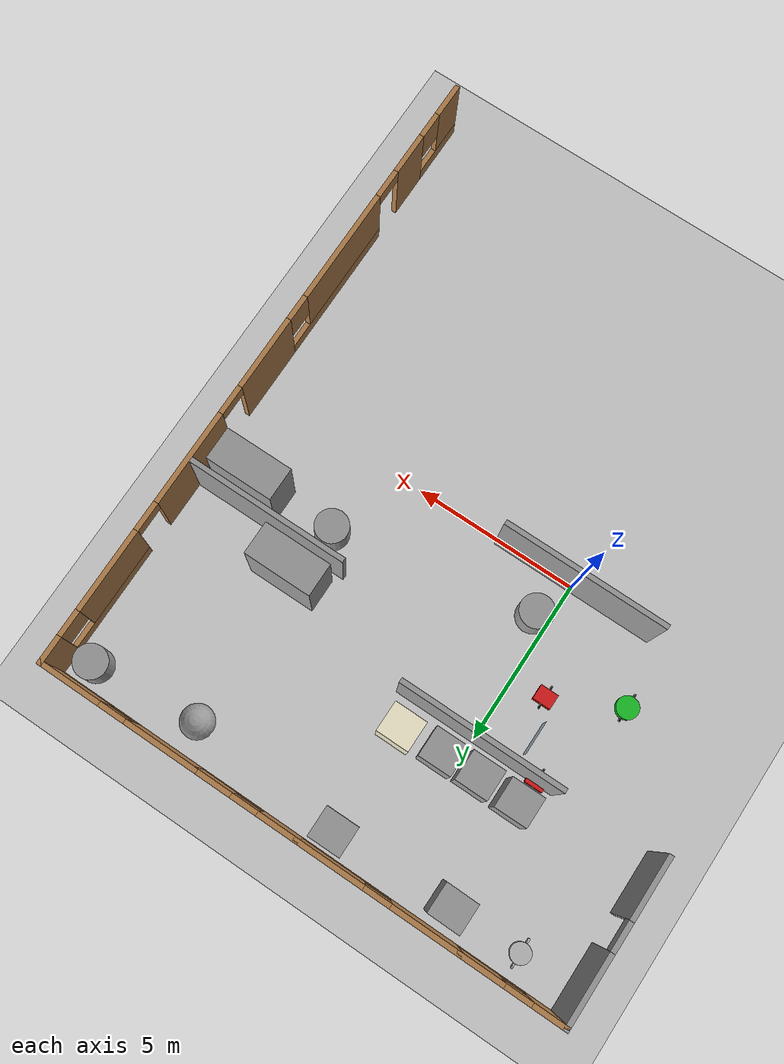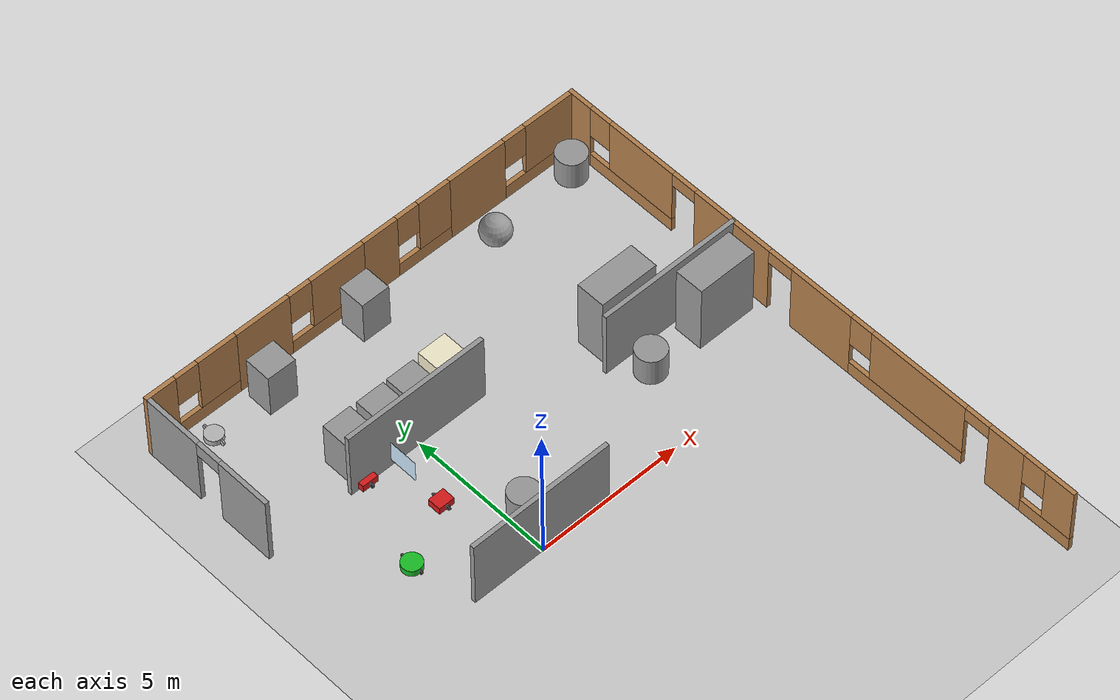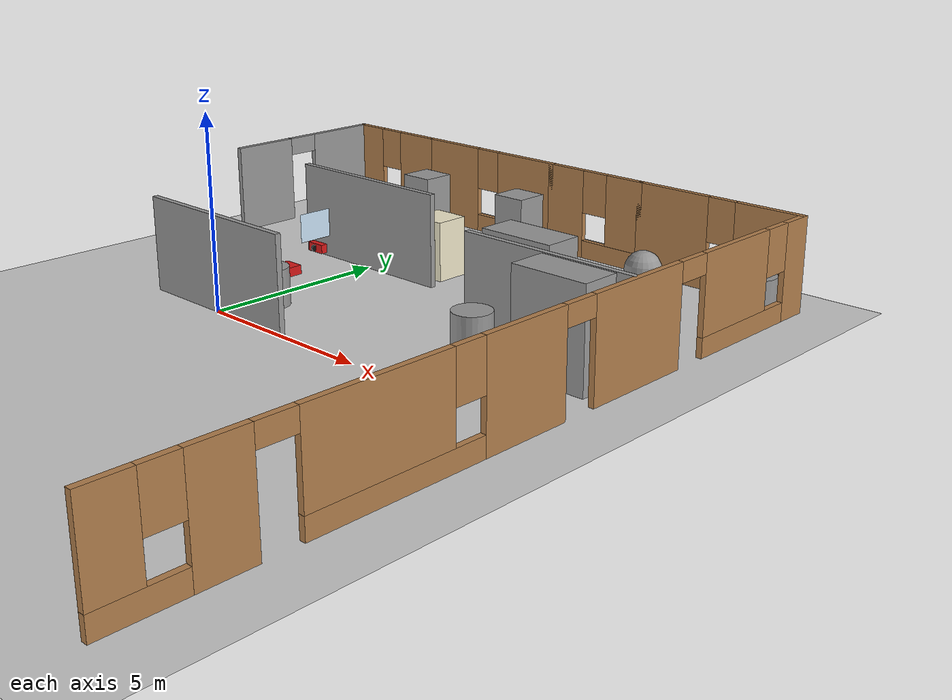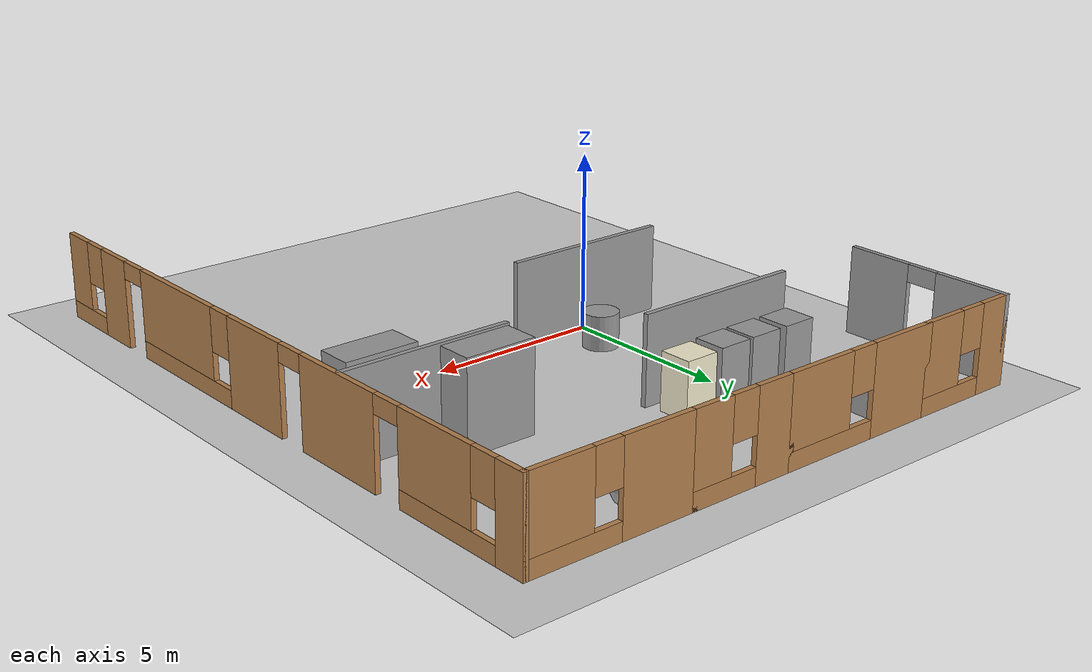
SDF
<sdf version="1.7">
 <world name="default">
  <model name="ground_plane">
   <static>1</static>
   <link name="link">
    <collision name="collision">
     <geometry><plane><normal>0 0 1</normal><size>100 100</size></plane></geometry>
     <surface><friction><ode><mu>100</mu><mu2>50</mu2></ode></friction></surface>
    </collision>
    <visual name="visual">
     <cast_shadows>0</cast_shadows>
     <geometry><plane><normal>0 0 1</normal><size>100 100</size></plane></geometry>
     <material>
      <script><uri>file://media/materials/scripts/gazebo.material</uri><name>Gazebo/Grey</name></script>
     </material>
    </visual>
   </link>
  </model>
  <model name="hospital_floor_v2">
   <link name="Wall_111">
    <pose>7.95 9.8256 0 0 -0 0</pose>
    <visual name="Wall_111_Visual_0">
     <pose>-1.37417 0 1.25 0 -0 0</pose>
     <geometry><box><size>2.25167 0.15 2.5</size></box></geometry>
     <material>
      <script><uri>file://media/materials/scripts/gazebo.material</uri><name>Gazebo/Wood</name></script>
      <ambient>1 1 1 1</ambient>
     </material>
     <meta><layer>0</layer></meta>
    </visual>
    <collision name="Wall_111_Collision_0">
     <geometry><box><size>2.25167 0.15 2.5</size></box></geometry>
     <pose>-1.37417 0 1.25 0 -0 0</pose>
    </collision>
    <visual name="Wall_111_Visual_1">
     <pose>1.12583 0 0.25 0 -0 0</pose>
     <geometry><box><size>2.74833 0.15 0.5</size></box></geometry>
     <material>
      <script><uri>file://media/materials/scripts/gazebo.material</uri><name>Gazebo/Wood</name></script>
      <ambient>1 1 1 1</ambient>
     </material>
     <meta><layer>0</layer></meta>
    </visual>
    <collision name="Wall_111_Collision_1">
     <geometry><box><size>2.74833 0.15 0.5</size></box></geometry>
     <pose>1.12583 0 0.25 0 -0 0</pose>
    </collision>
    <visual name="Wall_111_Visual_2">
     <pose>1.52583 0 1.5 0 -0 0</pose>
     <geometry><box><size>1.94833 0.15 2</size></box></geometry>
     <material>
      <script><uri>file://media/materials/scripts/gazebo.material</uri><name>Gazebo/Wood</name></script>
      <ambient>1 1 1 1</ambient>
     </material>
     <meta><layer>0</layer></meta>
    </visual>
    <collision name="Wall_111_Collision_2">
     <geometry><box><size>1.94833 0.15 2</size></box></geometry>
     <pose>1.52583 0 1.5 0 -0 0</pose>
    </collision>
    <visual name="Wall_111_Visual_3">
     <pose>0.151665 0 1.9 0 -0 0</pose>
     <geometry><box><size>0.8 0.15 1.2</size></box></geometry>
     <material>
      <script><uri>file://media/materials/scripts/gazebo.material</uri><name>Gazebo/Wood</name></script>
      <ambient>1 1 1 1</ambient>
     </material>
     <meta><layer>0</layer></meta>
    </visual>
    <collision name="Wall_111_Collision_3">
     <geometry><box><size>0.8 0.15 1.2</size></box></geometry>
     <pose>0.151665 0 1.9 0 -0 0</pose>
    </collision>
   </link>
   <link name="Wall_112">
    <pose>10.375 0.025599 0 0 -0 -1.5708</pose>
    <visual name="Wall_112_Visual_0">
     <pose>-9.42467 0 1.25 0 -0 0</pose>
     <geometry><box><size>0.900667 0.15 2.5</size></box></geometry>
     <material>
      <script><uri>file://media/materials/scripts/gazebo.material</uri><name>Gazebo/Wood</name></script>
      <ambient>1 1 1 1</ambient>
     </material>
     <meta><layer>0</layer></meta>
    </visual>
    <collision name="Wall_112_Collision_0">
     <geometry><box><size>0.900667 0.15 2.5</size></box></geometry>
     <pose>-9.42467 0 1.25 0 -0 0</pose>
    </collision>
    <visual name="Wall_112_Visual_1">
     <pose>-3.24113 0 1.25 0 -0 0</pose>
     <geometry><box><size>2.95288 0.15 2.5</size></box></geometry>
     <material>
      <script><uri>file://media/materials/scripts/gazebo.material</uri><name>Gazebo/Wood</name></script>
      <ambient>1 1 1 1</ambient>
     </material>
     <meta><layer>0</layer></meta>
    </visual>
    <collision name="Wall_112_Collision_1">
     <geometry><box><size>2.95288 0.15 2.5</size></box></geometry>
     <pose>-3.24113 0 1.25 0 -0 0</pose>
    </collision>
    <visual name="Wall_112_Visual_2">
     <pose>0.29202 0 1.25 0 -0 0</pose>
     <geometry><box><size>2.31342 0.15 2.5</size></box></geometry>
     <material>
      <script><uri>file://media/materials/scripts/gazebo.material</uri><name>Gazebo/Wood</name></script>
      <ambient>1 1 1 1</ambient>
     </material>
     <meta><layer>0</layer></meta>
    </visual>
    <collision name="Wall_112_Collision_2">
     <geometry><box><size>2.31342 0.15 2.5</size></box></geometry>
     <pose>0.29202 0 1.25 0 -0 0</pose>
    </collision>
    <visual name="Wall_112_Visual_3">
     <pose>7.36916 0 1.25 0 -0 0</pose>
     <geometry><box><size>1.2995 0.15 2.5</size></box></geometry>
     <material>
      <script><uri>file://media/materials/scripts/gazebo.material</uri><name>Gazebo/Wood</name></script>
      <ambient>1 1 1 1</ambient>
     </material>
     <meta><layer>0</layer></meta>
    </visual>
    <collision name="Wall_112_Collision_3">
     <geometry><box><size>1.2995 0.15 2.5</size></box></geometry>
     <pose>7.36916 0 1.25 0 -0 0</pose>
    </collision>
    <visual name="Wall_112_Visual_4">
     <pose>-7.29595 0 0.25 0 -0 0</pose>
     <geometry><box><size>3.35676 0.15 0.5</size></box></geometry>
     <material>
      <script><uri>file://media/materials/scripts/gazebo.material</uri><name>Gazebo/Wood</name></script>
      <ambient>1 1 1 1</ambient>
     </material>
     <meta><layer>0</layer></meta>
    </visual>
    <collision name="Wall_112_Collision_4">
     <geometry><box><size>3.35676 0.15 0.5</size></box></geometry>
     <pose>-7.29595 0 0.25 0 -0 0</pose>
    </collision>
    <visual name="Wall_112_Visual_5">
     <pose>3.63407 0 0.25 0 -0 0</pose>
     <geometry><box><size>4.37068 0.15 0.5</size></box></geometry>
     <material>
      <script><uri>file://media/materials/scripts/gazebo.material</uri><name>Gazebo/Wood</name></script>
      <ambient>1 1 1 1</ambient>
     </material>
     <meta><layer>0</layer></meta>
    </visual>
    <collision name="Wall_112_Collision_5">
     <geometry><box><size>4.37068 0.15 0.5</size></box></geometry>
     <pose>3.63407 0 0.25 0 -0 0</pose>
    </collision>
    <visual name="Wall_112_Visual_6">
     <pose>8.94696 0 0.25 0 -0 0</pose>
     <geometry><box><size>1.85609 0.15 0.5</size></box></geometry>
     <material>
      <script><uri>file://media/materials/scripts/gazebo.material</uri><name>Gazebo/Wood</name></script>
      <ambient>1 1 1 1</ambient>
     </material>
     <meta><layer>0</layer></meta>
    </visual>
    <collision name="Wall_112_Collision_6">
     <geometry><box><size>1.85609 0.15 0.5</size></box></geometry>
     <pose>8.94696 0 0.25 0 -0 0</pose>
    </collision>
    <visual name="Wall_112_Visual_7">
     <pose>-6.89595 0 1.5 0 -0 0</pose>
     <geometry><box><size>2.55676 0.15 2</size></box></geometry>
     <material>
      <script><uri>file://media/materials/scripts/gazebo.material</uri><name>Gazebo/Wood</name></script>
      <ambient>1 1 1 1</ambient>
     </material>
     <meta><layer>0</layer></meta>
    </visual>
    <collision name="Wall_112_Collision_7">
     <geometry><box><size>2.55676 0.15 2</size></box></geometry>
     <pose>-6.89595 0 1.5 0 -0 0</pose>
    </collision>
    <visual name="Wall_112_Visual_8">
     <pose>-6.89595 0 1.5 0 -0 0</pose>
     <geometry><box><size>2.55676 0.15 2</size></box></geometry>
     <material>
      <script><uri>file://media/materials/scripts/gazebo.material</uri><name>Gazebo/Wood</name></script>
      <ambient>1 1 1 1</ambient>
     </material>
     <meta><layer>0</layer></meta>
    </visual>
    <collision name="Wall_112_Collision_8">
     <geometry><box><size>2.55676 0.15 2</size></box></geometry>
     <pose>-6.89595 0 1.5 0 -0 0</pose>
    </collision>
    <visual name="Wall_112_Visual_9">
     <pose>4.03407 0 1.5 0 -0 0</pose>
     <geometry><box><size>3.57068 0.15 2</size></box></geometry>
     <material>
      <script><uri>file://media/materials/scripts/gazebo.material</uri><name>Gazebo/Wood</name></script>
      <ambient>1 1 1 1</ambient>
     </material>
     <meta><layer>0</layer></meta>
    </visual>
    <collision name="Wall_112_Collision_9">
     <geometry><box><size>3.57068 0.15 2</size></box></geometry>
     <pose>4.03407 0 1.5 0 -0 0</pose>
    </collision>
    <visual name="Wall_112_Visual_10">
     <pose>4.03407 0 1.5 0 -0 0</pose>
     <geometry><box><size>3.57068 0.15 2</size></box></geometry>
     <material>
      <script><uri>file://media/materials/scripts/gazebo.material</uri><name>Gazebo/Wood</name></script>
      <ambient>1 1 1 1</ambient>
     </material>
     <meta><layer>0</layer></meta>
    </visual>
    <collision name="Wall_112_Collision_10">
     <geometry><box><size>3.57068 0.15 2</size></box></geometry>
     <pose>4.03407 0 1.5 0 -0 0</pose>
    </collision>
    <visual name="Wall_112_Visual_11">
     <pose>9.34695 0 1.5 0 -0 0</pose>
     <geometry><box><size>1.05609 0.15 2</size></box></geometry>
     <material>
      <script><uri>file://media/materials/scripts/gazebo.material</uri><name>Gazebo/Wood</name></script>
      <ambient>1 1 1 1</ambient>
     </material>
     <meta><layer>0</layer></meta>
    </visual>
    <collision name="Wall_112_Collision_11">
     <geometry><box><size>1.05609 0.15 2</size></box></geometry>
     <pose>9.34695 0 1.5 0 -0 0</pose>
    </collision>
    <visual name="Wall_112_Visual_12">
     <pose>-8.57433 0 1.9 0 -0 0</pose>
     <geometry><box><size>0.8 0.15 1.2</size></box></geometry>
     <material>
      <script><uri>file://media/materials/scripts/gazebo.material</uri><name>Gazebo/Wood</name></script>
      <ambient>1 1 1 1</ambient>
     </material>
     <meta><layer>0</layer></meta>
    </visual>
    <collision name="Wall_112_Collision_12">
     <geometry><box><size>0.8 0.15 1.2</size></box></geometry>
     <pose>-8.57433 0 1.9 0 -0 0</pose>
    </collision>
    <visual name="Wall_112_Visual_13">
     <pose>1.84873 0 1.9 0 -0 0</pose>
     <geometry><box><size>0.8 0.15 1.2</size></box></geometry>
     <material>
      <script><uri>file://media/materials/scripts/gazebo.material</uri><name>Gazebo/Wood</name></script>
      <ambient>1 1 1 1</ambient>
     </material>
     <meta><layer>0</layer></meta>
    </visual>
    <collision name="Wall_112_Collision_13">
     <geometry><box><size>0.8 0.15 1.2</size></box></geometry>
     <pose>1.84873 0 1.9 0 -0 0</pose>
    </collision>
    <visual name="Wall_112_Visual_14">
     <pose>8.41891 0 1.9 0 -0 0</pose>
     <geometry><box><size>0.8 0.15 1.2</size></box></geometry>
     <material>
      <script><uri>file://media/materials/scripts/gazebo.material</uri><name>Gazebo/Wood</name></script>
      <ambient>1 1 1 1</ambient>
     </material>
     <meta><layer>0</layer></meta>
    </visual>
    <collision name="Wall_112_Collision_14">
     <geometry><box><size>0.8 0.15 1.2</size></box></geometry>
     <pose>8.41891 0 1.9 0 -0 0</pose>
    </collision>
    <visual name="Wall_112_Visual_15">
     <pose>-1.31469 0 2.25 0 -0 0</pose>
     <geometry><box><size>0.9 0.15 0.5</size></box></geometry>
     <material>
      <script><uri>file://media/materials/scripts/gazebo.material</uri><name>Gazebo/Wood</name></script>
      <ambient>1 1 1 1</ambient>
     </material>
     <meta><layer>0</layer></meta>
    </visual>
    <collision name="Wall_112_Collision_15">
     <geometry><box><size>0.9 0.15 0.5</size></box></geometry>
     <pose>-1.31469 0 2.25 0 -0 0</pose>
    </collision>
    <visual name="Wall_112_Visual_16">
     <pose>-5.16757 0 2.25 0 -0 0</pose>
     <geometry><box><size>0.9 0.15 0.5</size></box></geometry>
     <material>
      <script><uri>file://media/materials/scripts/gazebo.material</uri><name>Gazebo/Wood</name></script>
      <ambient>1 1 1 1</ambient>
     </material>
     <meta><layer>0</layer></meta>
    </visual>
    <collision name="Wall_112_Collision_16">
     <geometry><box><size>0.9 0.15 0.5</size></box></geometry>
     <pose>-5.16757 0 2.25 0 -0 0</pose>
    </collision>
    <visual name="Wall_112_Visual_17">
     <pose>-5.16757 0 2.25 0 -0 0</pose>
     <geometry><box><size>0.9 0.15 0.5</size></box></geometry>
     <material>
      <script><uri>file://media/materials/scripts/gazebo.material</uri><name>Gazebo/Wood</name></script>
      <ambient>1 1 1 1</ambient>
     </material>
     <meta><layer>0</layer></meta>
    </visual>
    <collision name="Wall_112_Collision_17">
     <geometry><box><size>0.9 0.15 0.5</size></box></geometry>
     <pose>-5.16757 0 2.25 0 -0 0</pose>
    </collision>
    <visual name="Wall_112_Visual_18">
     <pose>6.26941 0 2.25 0 -0 0</pose>
     <geometry><box><size>0.9 0.15 0.5</size></box></geometry>
     <material>
      <script><uri>file://media/materials/scripts/gazebo.material</uri><name>Gazebo/Wood</name></script>
      <ambient>1 1 1 1</ambient>
     </material>
     <meta><layer>0</layer></meta>
    </visual>
    <collision name="Wall_112_Collision_18">
     <geometry><box><size>0.9 0.15 0.5</size></box></geometry>
     <pose>6.26941 0 2.25 0 -0 0</pose>
    </collision>
    <visual name="Wall_112_Visual_19">
     <pose>6.26941 0 2.25 0 -0 0</pose>
     <geometry><box><size>0.9 0.15 0.5</size></box></geometry>
     <material>
      <script><uri>file://media/materials/scripts/gazebo.material</uri><name>Gazebo/Wood</name></script>
      <ambient>1 1 1 1</ambient>
     </material>
     <meta><layer>0</layer></meta>
    </visual>
    <collision name="Wall_112_Collision_19">
     <geometry><box><size>0.9 0.15 0.5</size></box></geometry>
     <pose>6.26941 0 2.25 0 -0 0</pose>
    </collision>
   </link>
   <link name="Wall_115">
    <collision name="Wall_115_Collision">
     <geometry><box><size>5 0.15 2.5</size></box></geometry>
     <pose>0 0 1.25 0 -0 0</pose>
    </collision>
    <visual name="Wall_115_Visual">
     <pose>0 0 1.25 0 -0 0</pose>
     <geometry><box><size>5 0.15 2.5</size></box></geometry>
     <material>
      <script><uri>file://media/materials/scripts/gazebo.material</uri><name>Gazebo/Grey</name></script>
      <ambient>1 1 1 1</ambient>
     </material>
     <meta><layer>0</layer></meta>
    </visual>
    <pose>-0.036828 5.04089 0 0 -0 0</pose>
   </link>
   <link name="Wall_117">
    <collision name="Wall_117_Collision">
     <geometry><box><size>5 0.15 2.5</size></box></geometry>
     <pose>0 0 1.25 0 -0 0</pose>
    </collision>
    <visual name="Wall_117_Visual">
     <pose>0 0 1.25 0 -0 0</pose>
     <geometry><box><size>5 0.15 2.5</size></box></geometry>
     <material>
      <script><uri>file://media/materials/scripts/gazebo.material</uri><name>Gazebo/Grey</name></script>
      <ambient>1 1 1 1</ambient>
     </material>
     <meta><layer>0</layer></meta>
    </visual>
    <pose>-0.036828 0.052719 0 0 -0 0</pose>
   </link>
   <link name="Wall_123">
    <collision name="Wall_123_Collision">
     <geometry><box><size>5 0.15 2.5</size></box></geometry>
     <pose>0 0 1.25 0 -0 0</pose>
    </collision>
    <visual name="Wall_123_Visual">
     <pose>0 0 1.25 0 -0 0</pose>
     <geometry><box><size>5 0.15 2.5</size></box></geometry>
     <material>
      <script><uri>file://media/materials/scripts/gazebo.material</uri><name>Gazebo/Grey</name></script>
      <ambient>1 1 1 1</ambient>
     </material>
     <meta><layer>0</layer></meta>
    </visual>
    <pose>7.90133 3.27089 0 0 -0 0</pose>
   </link>
   <link name="Wall_41">
    <pose>-5.525 7.4006 0 0 -0 -1.5708</pose>
    <visual name="Wall_41_Visual_0">
     <pose>-1.40548 0 1.25 0 -0 0</pose>
     <geometry><box><size>2.18904 0.15 2.5</size></box></geometry>
     <material>
      <script><uri>file://media/materials/scripts/gazebo.material</uri><name>Gazebo/Grey</name></script>
      <ambient>1 1 1 1</ambient>
     </material>
     <meta><layer>0</layer></meta>
    </visual>
    <collision name="Wall_41_Collision_0">
     <geometry><box><size>2.18904 0.15 2.5</size></box></geometry>
     <pose>-1.40548 0 1.25 0 -0 0</pose>
    </collision>
    <visual name="Wall_41_Visual_1">
     <pose>1.54452 0 1.25 0 -0 0</pose>
     <geometry><box><size>1.91096 0.15 2.5</size></box></geometry>
     <material>
      <script><uri>file://media/materials/scripts/gazebo.material</uri><name>Gazebo/Grey</name></script>
      <ambient>1 1 1 1</ambient>
     </material>
     <meta><layer>0</layer></meta>
    </visual>
    <collision name="Wall_41_Collision_1">
     <geometry><box><size>1.91096 0.15 2.5</size></box></geometry>
     <pose>1.54452 0 1.25 0 -0 0</pose>
    </collision>
    <visual name="Wall_41_Visual_2">
     <pose>0.139037 0 2.25 0 -0 0</pose>
     <geometry><box><size>0.9 0.15 0.5</size></box></geometry>
     <material>
      <script><uri>file://media/materials/scripts/gazebo.material</uri><name>Gazebo/Grey</name></script>
      <ambient>1 1 1 1</ambient>
     </material>
     <meta><layer>0</layer></meta>
    </visual>
    <collision name="Wall_41_Collision_2">
     <geometry><box><size>0.9 0.15 0.5</size></box></geometry>
     <pose>0.139037 0 2.25 0 -0 0</pose>
    </collision>
   </link>
   <link name="Wall_43">
    <pose>-3.975 9.8256 0 0 -0 0</pose>
    <visual name="Wall_43_Visual_0">
     <pose>-1.09822 0 1.25 0 -0 0</pose>
     <geometry><box><size>1.05355 0.15 2.5</size></box></geometry>
     <material>
      <script><uri>file://media/materials/scripts/gazebo.material</uri><name>Gazebo/Wood</name></script>
      <ambient>1 1 1 1</ambient>
     </material>
     <meta><layer>0</layer></meta>
    </visual>
    <collision name="Wall_43_Collision_0">
     <geometry><box><size>1.05355 0.15 2.5</size></box></geometry>
     <pose>-1.09822 0 1.25 0 -0 0</pose>
    </collision>
    <visual name="Wall_43_Visual_1">
     <pose>0.526776 0 0.25 0 -0 0</pose>
     <geometry><box><size>2.19645 0.15 0.5</size></box></geometry>
     <material>
      <script><uri>file://media/materials/scripts/gazebo.material</uri><name>Gazebo/Wood</name></script>
      <ambient>1 1 1 1</ambient>
     </material>
     <meta><layer>0</layer></meta>
    </visual>
    <collision name="Wall_43_Collision_1">
     <geometry><box><size>2.19645 0.15 0.5</size></box></geometry>
     <pose>0.526776 0 0.25 0 -0 0</pose>
    </collision>
    <visual name="Wall_43_Visual_2">
     <pose>0.926776 0 1.5 0 -0 0</pose>
     <geometry><box><size>1.39645 0.15 2</size></box></geometry>
     <material>
      <script><uri>file://media/materials/scripts/gazebo.material</uri><name>Gazebo/Wood</name></script>
      <ambient>1 1 1 1</ambient>
     </material>
     <meta><layer>0</layer></meta>
    </visual>
    <collision name="Wall_43_Collision_2">
     <geometry><box><size>1.39645 0.15 2</size></box></geometry>
     <pose>0.926776 0 1.5 0 -0 0</pose>
    </collision>
    <visual name="Wall_43_Visual_3">
     <pose>-0.171448 0 1.9 0 -0 0</pose>
     <geometry><box><size>0.8 0.15 1.2</size></box></geometry>
     <material>
      <script><uri>file://media/materials/scripts/gazebo.material</uri><name>Gazebo/Wood</name></script>
      <ambient>1 1 1 1</ambient>
     </material>
     <meta><layer>0</layer></meta>
    </visual>
    <collision name="Wall_43_Collision_3">
     <geometry><box><size>0.8 0.15 1.2</size></box></geometry>
     <pose>-0.171448 0 1.9 0 -0 0</pose>
    </collision>
   </link>
   <link name="Wall_51">
    <pose>0 9.8256 0 0 -0 0</pose>
    <visual name="Wall_51_Visual_0">
     <pose>-1.45483 0 1.25 0 -0 0</pose>
     <geometry><box><size>2.09033 0.15 2.5</size></box></geometry>
     <material>
      <script><uri>file://media/materials/scripts/gazebo.material</uri><name>Gazebo/Wood</name></script>
      <ambient>1 1 1 1</ambient>
     </material>
     <meta><layer>0</layer></meta>
    </visual>
    <collision name="Wall_51_Collision_0">
     <geometry><box><size>2.09033 0.15 2.5</size></box></geometry>
     <pose>-1.45483 0 1.25 0 -0 0</pose>
    </collision>
    <visual name="Wall_51_Visual_1">
     <pose>1.04517 0 0.25 0 -0 0</pose>
     <geometry><box><size>2.90967 0.15 0.5</size></box></geometry>
     <material>
      <script><uri>file://media/materials/scripts/gazebo.material</uri><name>Gazebo/Wood</name></script>
      <ambient>1 1 1 1</ambient>
     </material>
     <meta><layer>0</layer></meta>
    </visual>
    <collision name="Wall_51_Collision_1">
     <geometry><box><size>2.90967 0.15 0.5</size></box></geometry>
     <pose>1.04517 0 0.25 0 -0 0</pose>
    </collision>
    <visual name="Wall_51_Visual_2">
     <pose>1.44517 0 1.5 0 -0 0</pose>
     <geometry><box><size>2.10967 0.15 2</size></box></geometry>
     <material>
      <script><uri>file://media/materials/scripts/gazebo.material</uri><name>Gazebo/Wood</name></script>
      <ambient>1 1 1 1</ambient>
     </material>
     <meta><layer>0</layer></meta>
    </visual>
    <collision name="Wall_51_Collision_2">
     <geometry><box><size>2.10967 0.15 2</size></box></geometry>
     <pose>1.44517 0 1.5 0 -0 0</pose>
    </collision>
    <visual name="Wall_51_Visual_3">
     <pose>-0.009668 0 1.9 0 -0 0</pose>
     <geometry><box><size>0.8 0.15 1.2</size></box></geometry>
     <material>
      <script><uri>file://media/materials/scripts/gazebo.material</uri><name>Gazebo/Wood</name></script>
      <ambient>1 1 1 1</ambient>
     </material>
     <meta><layer>0</layer></meta>
    </visual>
    <collision name="Wall_51_Collision_3">
     <geometry><box><size>0.8 0.15 1.2</size></box></geometry>
     <pose>-0.009668 0 1.9 0 -0 0</pose>
    </collision>
   </link>
   <link name="Wall_63">
    <pose>3.975 9.8256 0 0 -0 0</pose>
    <visual name="Wall_63_Visual_0">
     <pose>-0.997279 0 1.25 0 -0 0</pose>
     <geometry><box><size>1.25544 0.15 2.5</size></box></geometry>
     <material>
      <script><uri>file://media/materials/scripts/gazebo.material</uri><name>Gazebo/Wood</name></script>
      <ambient>1 1 1 1</ambient>
     </material>
     <meta><layer>0</layer></meta>
    </visual>
    <collision name="Wall_63_Collision_0">
     <geometry><box><size>1.25544 0.15 2.5</size></box></geometry>
     <pose>-0.997279 0 1.25 0 -0 0</pose>
    </collision>
    <visual name="Wall_63_Visual_1">
     <pose>0.627721 0 0.25 0 -0 0</pose>
     <geometry><box><size>1.99456 0.15 0.5</size></box></geometry>
     <material>
      <script><uri>file://media/materials/scripts/gazebo.material</uri><name>Gazebo/Wood</name></script>
      <ambient>1 1 1 1</ambient>
     </material>
     <meta><layer>0</layer></meta>
    </visual>
    <collision name="Wall_63_Collision_1">
     <geometry><box><size>1.99456 0.15 0.5</size></box></geometry>
     <pose>0.627721 0 0.25 0 -0 0</pose>
    </collision>
    <visual name="Wall_63_Visual_2">
     <pose>1.02772 0 1.5 0 -0 0</pose>
     <geometry><box><size>1.19456 0.15 2</size></box></geometry>
     <material>
      <script><uri>file://media/materials/scripts/gazebo.material</uri><name>Gazebo/Wood</name></script>
      <ambient>1 1 1 1</ambient>
     </material>
     <meta><layer>0</layer></meta>
    </visual>
    <collision name="Wall_63_Collision_2">
     <geometry><box><size>1.19456 0.15 2</size></box></geometry>
     <pose>1.02772 0 1.5 0 -0 0</pose>
    </collision>
    <visual name="Wall_63_Visual_3">
     <pose>0.030442 0 1.9 0 -0 0</pose>
     <geometry><box><size>0.8 0.15 1.2</size></box></geometry>
     <material>
      <script><uri>file://media/materials/scripts/gazebo.material</uri><name>Gazebo/Wood</name></script>
      <ambient>1 1 1 1</ambient>
     </material>
     <meta><layer>0</layer></meta>
    </visual>
    <collision name="Wall_63_Collision_3">
     <geometry><box><size>0.8 0.15 1.2</size></box></geometry>
     <pose>0.030442 0 1.9 0 -0 0</pose>
    </collision>
   </link>
   <static>1</static>
  </model>
  <model name="unit_sphere">
   <pose>6.43497 8.8112 0.5 0 -0 0</pose>
   <link name="link">
    <inertial>
     <mass>1</mass>
     <inertia><ixx>0.1</ixx><ixy>0</ixy><ixz>0</ixz><iyy>0.1</iyy><iyz>0</iyz><izz>0.1</izz></inertia>
    </inertial>
    <collision name="collision"><geometry><sphere><radius>0.5</radius></sphere></geometry></collision>
    <visual name="visual">
     <geometry><sphere><radius>0.5</radius></sphere></geometry>
     <material>
      <script><name>Gazebo/Grey</name><uri>file://media/materials/scripts/gazebo.material</uri></script>
     </material>
    </visual>
   </link>
  </model>
  <model name="unit_box_clone_1_clone">
   <pose>-1.8062 9.0208 0.807095 0 0 -0.008016</pose>
   <link name="link">
    <inertial>
     <mass>1</mass>
     <inertia>
      <ixx>0.166667</ixx>
      <ixy>0</ixy>
      <ixz>0</ixz>
      <iyy>0.166667</iyy>
      <iyz>0</iyz>
      <izz>0.166667</izz>
     </inertia>
    </inertial>
    <collision name="collision"><geometry><box><size>1 0.926158 1.61419</size></box></geometry></collision>
    <visual name="visual">
     <geometry><box><size>1 0.926158 1.61419</size></box></geometry>
     <material>
      <script><name>Gazebo/Grey</name><uri>file://media/materials/scripts/gazebo.material</uri></script>
     </material>
    </visual>
   </link>
  </model>
  <model name="unit_box_clone_1_clone_0">
   <pose>1.77928 9.14426 0.807095 0 -0 0.001709</pose>
   <link name="link">
    <inertial>
     <mass>1</mass>
     <inertia>
      <ixx>0.166667</ixx>
      <ixy>0</ixy>
      <ixz>0</ixz>
      <iyy>0.166667</iyy>
      <iyz>0</iyz>
      <izz>0.166667</izz>
     </inertia>
    </inertial>
    <collision name="collision"><geometry><box><size>1 0.926158 1.61419</size></box></geometry></collision>
    <visual name="visual">
     <geometry><box><size>1 0.926158 1.61419</size></box></geometry>
     <material>
      <script><name>Gazebo/Grey</name><uri>file://media/materials/scripts/gazebo.material</uri></script>
     </material>
    </visual>
   </link>
  </model>
  <model name="unit_box_clone_1_clone_clone_0">
   <pose>-1.79708 5.85951 0.807095 0 -0 0.002436</pose>
   <link name="link">
    <inertial>
     <mass>1</mass>
     <inertia>
      <ixx>0.166667</ixx>
      <ixy>0</ixy>
      <ixz>0</ixz>
      <iyy>0.166667</iyy>
      <iyz>0</iyz>
      <izz>0.166667</izz>
     </inertia>
    </inertial>
    <collision name="collision"><geometry><box><size>1 0.926158 1.61419</size></box></geometry></collision>
    <visual name="visual">
     <geometry><box><size>1 0.926158 1.61419</size></box></geometry>
     <material>
      <script><name>Gazebo/Grey</name><uri>file://media/materials/scripts/gazebo.material</uri></script>
     </material>
    </visual>
   </link>
  </model>
  <model name="unit_box_clone_1_clone_clone_1">
   <pose>-0.584494 5.84415 0.807095 0 -0 0.001526</pose>
   <link name="link">
    <inertial>
     <mass>1</mass>
     <inertia>
      <ixx>0.166667</ixx>
      <ixy>0</ixy>
      <ixz>0</ixz>
      <iyy>0.166667</iyy>
      <iyz>0</iyz>
      <izz>0.166667</izz>
     </inertia>
    </inertial>
    <collision name="collision"><geometry><box><size>1 0.926158 1.61419</size></box></geometry></collision>
    <visual name="visual">
     <geometry><box><size>1 0.926158 1.61419</size></box></geometry>
     <material>
      <script><name>Gazebo/Grey</name><uri>file://media/materials/scripts/gazebo.material</uri></script>
     </material>
    </visual>
   </link>
  </model>
  <model name="unit_box_clone_1_clone_clone_2">
   <pose>0.536002 5.85952 0.807095 0 -0 0.002294</pose>
   <link name="link">
    <inertial>
     <mass>1</mass>
     <inertia>
      <ixx>0.166667</ixx>
      <ixy>0</ixy>
      <ixz>0</ixz>
      <iyy>0.166667</iyy>
      <iyz>0</iyz>
      <izz>0.166667</izz>
     </inertia>
    </inertial>
    <collision name="collision"><geometry><box><size>1 0.926158 1.61419</size></box></geometry></collision>
    <visual name="visual">
     <geometry><box><size>1 0.926158 1.61419</size></box></geometry>
     <material>
      <script><name>Gazebo/Grey</name><uri>file://media/materials/scripts/gazebo.material</uri></script>
     </material>
    </visual>
   </link>
  </model>
  <model name="unit_cylinder">
   <pose>0.473143 1.27189 0.499998 3e-06 -1e-06 0</pose>
   <link name="link">
    <inertial>
     <mass>1</mass>
     <inertia><ixx>0.145833</ixx><ixy>0</ixy><ixz>0</ixz><iyy>0.145833</iyy><iyz>0</iyz><izz>0.125</izz></inertia>
    </inertial>
    <collision name="collision">
     <geometry><cylinder><radius>0.5</radius><length>1</length></cylinder></geometry>
    </collision>
    <visual name="visual">
     <geometry><cylinder><radius>0.5</radius><length>1</length></cylinder></geometry>
     <material>
      <script><name>Gazebo/Grey</name><uri>file://media/materials/scripts/gazebo.material</uri></script>
     </material>
    </visual>
   </link>
  </model>
  <model name="unit_cylinder_1">
   <pose>9.66837 9.10515 0.499994 4e-06 -2e-06 0</pose>
   <link name="link">
    <inertial>
     <mass>1</mass>
     <inertia><ixx>0.145833</ixx><ixy>0</ixy><ixz>0</ixz><iyy>0.145833</iyy><iyz>0</iyz><izz>0.125</izz></inertia>
    </inertial>
    <collision name="collision">
     <geometry><cylinder><radius>0.5</radius><length>1</length></cylinder></geometry>
    </collision>
    <visual name="visual">
     <geometry><cylinder><radius>0.5</radius><length>1</length></cylinder></geometry>
     <material>
      <script><name>Gazebo/Grey</name><uri>file://media/materials/scripts/gazebo.material</uri></script>
     </material>
    </visual>
   </link>
  </model>
  <model name="unit_cylinder_3">
   <pose>6.38748 2.42341 0.499994 4e-06 -2e-06 0</pose>
   <link name="link">
    <inertial>
     <mass>1</mass>
     <inertia><ixx>0.145833</ixx><ixy>0</ixy><ixz>0</ixz><iyy>0.145833</iyy><iyz>0</iyz><izz>0.125</izz></inertia>
    </inertial>
    <collision name="collision">
     <geometry><cylinder><radius>0.5</radius><length>1</length></cylinder></geometry>
    </collision>
    <visual name="visual">
     <geometry><cylinder><radius>0.5</radius><length>1</length></cylinder></geometry>
     <material>
      <script><name>Gazebo/Grey</name><uri>file://media/materials/scripts/gazebo.material</uri></script>
     </material>
    </visual>
   </link>
  </model>
  <model name="unit_box_0_clone">
   <pose>8.94815 2.52342 1.27087 -0 -4e-06 0.001443</pose>
   <link name="link">
    <inertial>
     <mass>1</mass>
     <inertia>
      <ixx>0.166667</ixx>
      <ixy>0</ixy>
      <ixz>0</ixz>
      <iyy>0.166667</iyy>
      <iyz>0</iyz>
      <izz>0.166667</izz>
     </inertia>
    </inertial>
    <collision name="collision"><geometry><box><size>2.05181 1 2.54174</size></box></geometry></collision>
    <visual name="visual">
     <geometry><box><size>2.05181 1 2.54174</size></box></geometry>
     <material>
      <script><name>Gazebo/Grey</name><uri>file://media/materials/scripts/gazebo.material</uri></script>
     </material>
    </visual>
   </link>
  </model>
  <model name="unit_box_0_clone_0">
   <pose>6.64755 4.06383 1.27087 0 -4e-06 0.001442</pose>
   <link name="link">
    <inertial>
     <mass>1</mass>
     <inertia>
      <ixx>0.166667</ixx>
      <ixy>0</ixy>
      <ixz>0</ixz>
      <iyy>0.166667</iyy>
      <iyz>0</iyz>
      <izz>0.166667</izz>
     </inertia>
    </inertial>
    <collision name="collision"><geometry><box><size>2.05181 1 2.54174</size></box></geometry></collision>
    <visual name="visual">
     <geometry><box><size>2.05181 1 2.54174</size></box></geometry>
     <material>
      <script><name>Gazebo/Grey</name><uri>file://media/materials/scripts/gazebo.material</uri></script>
     </material>
    </visual>
   </link>
  </model>
  <model name="unit_box_clone_1_clone_clone">
   <link name="link">
    <inertial>
     <mass>1</mass>
     <inertia>
      <ixx>0.166667</ixx>
      <ixy>0</ixy>
      <ixz>0</ixz>
      <iyy>0.166667</iyy>
      <iyz>0</iyz>
      <izz>0.166667</izz>
     </inertia>
    </inertial>
    <visual name="visual">
     <geometry><box><size>1 0.926158 1.61419</size></box></geometry>
     <material>
      <script><name>Gazebo/Grey</name><uri>file://media/materials/scripts/gazebo.material</uri></script>
      <shader type="pixel"><normal_map>__default__</normal_map></shader>
      <ambient>0.85 0.82 0.7 0</ambient>
      <diffuse>0.95 0.92 0.8 1</diffuse>
      <specular>0.03 0.03 0.03 1</specular>
      <emissive>0 0 0 1</emissive>
     </material>
    </visual>
    <collision name="collision">
     <geometry><box><size>1 0.926158 1.61419</size></box></geometry>
     <surface>
      <friction>
       <ode><mu>1</mu><mu2>1</mu2><fdir1>0 0 0</fdir1><slip1>0</slip1><slip2>0</slip2></ode>
       <torsional>
        <coefficient>1</coefficient>
        <patch_radius>0</patch_radius>
        <surface_radius>0</surface_radius>
        <use_patch_radius>1</use_patch_radius>
        <ode><slip>0</slip></ode>
       </torsional>
      </friction>
      <bounce><restitution_coefficient>0</restitution_coefficient><threshold>1e+06</threshold></bounce>
      <contact>
       <collide_without_contact>0</collide_without_contact>
       <collide_without_contact_bitmask>1</collide_without_contact_bitmask>
       <collide_bitmask>1</collide_bitmask>
       <ode>
        <soft_cfm>0</soft_cfm>
        <soft_erp>0.2</soft_erp>
        <kp>1e+13</kp>
        <kd>1</kd>
        <max_vel>0.01</max_vel>
        <min_depth>0</min_depth>
       </ode>
       <bullet>
        <split_impulse>1</split_impulse>
        <split_impulse_penetration_threshold>-0.01</split_impulse_penetration_threshold>
        <soft_cfm>0</soft_cfm>
        <soft_erp>0.2</soft_erp>
        <kp>1e+13</kp>
        <kd>1</kd>
       </bullet>
      </contact>
     </surface>
    </collision>
   </link>
   <static>0</static>
   <pose>1.79465 5.93627 0.807095 0 -0 0.001182</pose>
  </model>
  <model name="unit_box_0">
   <link name="link">
    <inertial>
     <mass>1</mass>
     <inertia>
      <ixx>0.166667</ixx>
      <ixy>0</ixy>
      <ixz>0</ixz>
      <iyy>0.166667</iyy>
      <iyz>0</iyz>
      <izz>0.166667</izz>
     </inertia>
    </inertial>
    <visual name="visual">
     <geometry><box><size>0 1.00001 0.786279</size></box></geometry>
     <material>
      <script><name>Gazebo/Grey</name><uri>file://media/materials/scripts/gazebo.material</uri></script>
      <shader type="pixel"><normal_map>__default__</normal_map></shader>
      <ambient>0.7 0.8 0.9 0</ambient>
      <diffuse>0.8 0.9 0.98 1</diffuse>
      <specular>0.04 0.04 0.04 1</specular>
      <emissive>0 0 0 1</emissive>
     </material>
    </visual>
    <collision name="collision">
     <geometry><box><size>0 1.00001 0.786279</size></box></geometry>
     <surface>
      <friction>
       <ode><mu>1</mu><mu2>1</mu2><fdir1>0 0 0</fdir1><slip1>0</slip1><slip2>0</slip2></ode>
       <torsional>
        <coefficient>1</coefficient>
        <patch_radius>0</patch_radius>
        <surface_radius>0</surface_radius>
        <use_patch_radius>1</use_patch_radius>
        <ode><slip>0</slip></ode>
       </torsional>
      </friction>
      <bounce><restitution_coefficient>0</restitution_coefficient><threshold>1e+06</threshold></bounce>
      <contact>
       <collide_without_contact>0</collide_without_contact>
       <collide_without_contact_bitmask>1</collide_without_contact_bitmask>
       <collide_bitmask>1</collide_bitmask>
       <ode>
        <soft_cfm>0</soft_cfm>
        <soft_erp>0.2</soft_erp>
        <kp>1e+13</kp>
        <kd>1</kd>
        <max_vel>0.01</max_vel>
        <min_depth>0</min_depth>
       </ode>
       <bullet>
        <split_impulse>1</split_impulse>
        <split_impulse_penetration_threshold>-0.01</split_impulse_penetration_threshold>
        <soft_cfm>0</soft_cfm>
        <soft_erp>0.2</soft_erp>
        <kp>1e+13</kp>
        <kd>1</kd>
       </bullet>
      </contact>
     </surface>
    </collision>
   </link>
   <static>0</static>
   <pose>-1.27711 4.21102 1.10738 0 -0 8e-06</pose>
  </model>
  <include><uri>model://cleaner_robot</uri><name>cleaner_robot_1</name><pose>-4 9 0.2 0 0 0</pose></include>
  <include><uri>model://sample_robot</uri><name>sample_robot_1</name><pose>-2 5 0.2 0 0 0</pose></include>
  <include><uri>model://sample_robot</uri><name>sample_robot_2</name><pose>-1 3 0.2 0 0 0</pose></include>
  <include><uri>model://hybrid_robot</uri><name>hybrid_robot</name><pose>-3 2 0.2 0 0 0</pose></include>
 </world>
</sdf>
